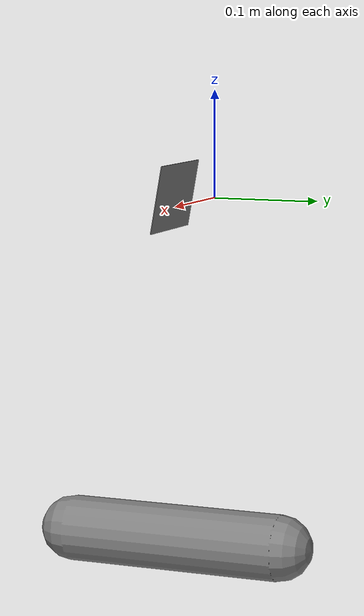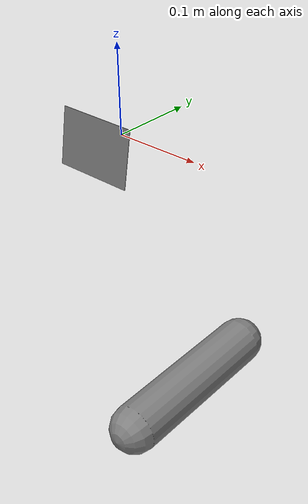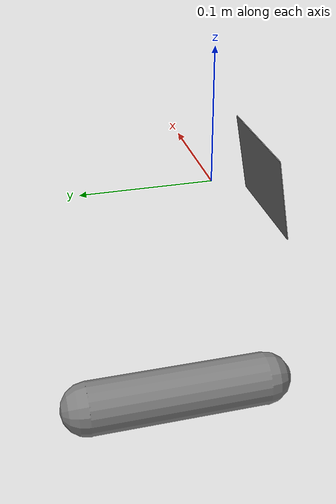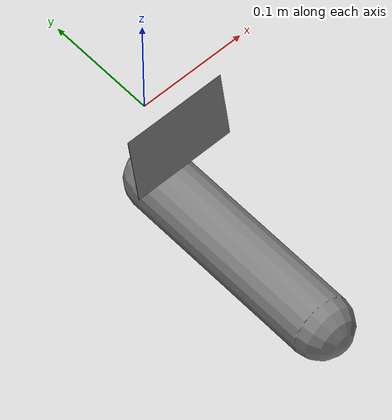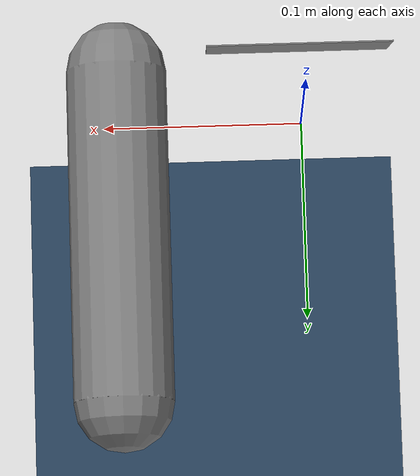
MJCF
<mujoco>

  <size memory="5M"/>

  <statistic extent="0.5" center="0 -.5 0"/>

  <visual>
    <map znear="0.1" zfar="10"/>
    <quality shadowsize="8192"/>
  </visual>

  <option density="1.225" viscosity="1.8e-5" timestep="1e-3" integrator="implicitfast"/>

  <asset>
    <texture name="grid" type="2d" builtin="checker" rgb1=".1 .2 .3" rgb2=".2 .3 .4" width="100" height="100"/>
    <material name="grid" texture="grid" texrepeat="8 8" texuniform="true" reflectance=".2"/>
  </asset>

  <default>
    <geom solref=".5e-4" solimp="0.9 0.99 1e-4" fluidcoef="0.5 0.25 0.5 2.0 1.0"/>
    <default class="card">
      <geom type="box" size="0.047 0.032 .00035" mass="1.84e-4" fluidshape="ellipsoid" contype="0" conaffinity="0"/>
    </default>
    <default class="collision">
      <geom type="box" mass="0" size="0.047 0.032 .00035" group="3" friction=".1"/>
    </default>
  </default>

  <worldbody>
    <light cutoff="30" pos="0 1 1" dir="0 -1 -2"/>
    <light cutoff="30" pos="0 -1 1" dir="0 1 -2"/>
    <camera name="cinematic" pos="0.119 -0.507 0.239" xyaxes="1 0 0 0 0.608 0.794"  mode="trackcom" fovy="40"/>

    <geom type="plane" size="5 5 .01" pos="0 0 -1" material="grid"/>
    <geom type="capsule" size="0.03" fromto=".1 -.1 -.3 .1 .1 -.3"/>

    <body pos="0.000 -0.040 -0.000" euler="-100 180 0">
      <freejoint/>
      <geom class="card"/>
      <geom class="collision"/>
    </body>

  </worldbody>
</mujoco>
